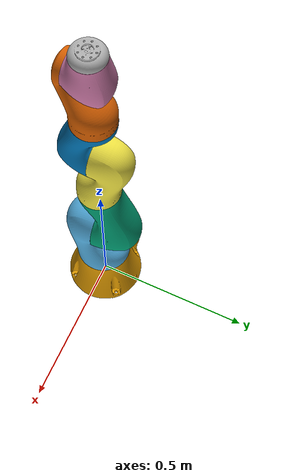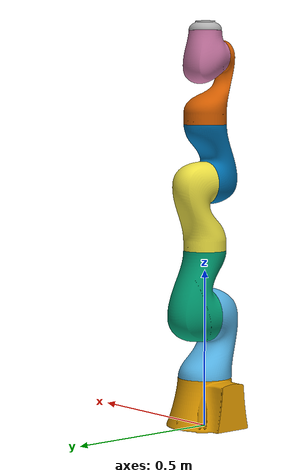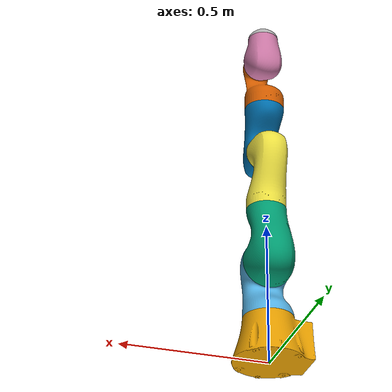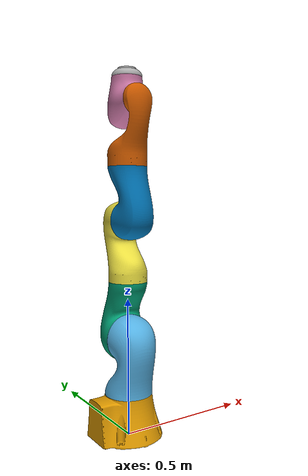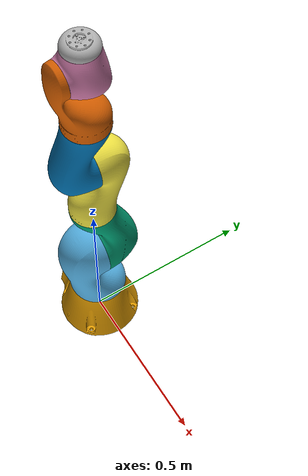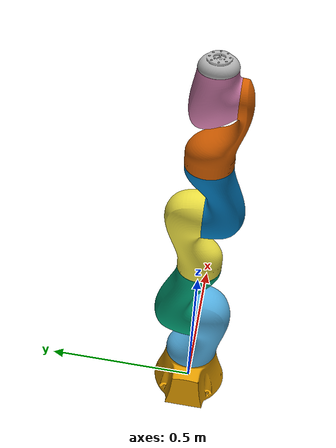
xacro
<?xml version="1.0"?>

<robot name="iiwa" xmlns:xacro="http://www.ros.org/wiki/xacro">

<xacro:include filename="$(find iiwa_description)/urdf/iiwa_macros.xacro" />
<xacro:include filename="$(find iiwa_description)/urdf/iiwa_parameters.xacro" />

    <m_link_mesh    name="${link00_name}"
                    origin_xyz="0 0 0" origin_rpy="0 0 0"
                    meshfile="package://iiwa_description/meshes/link0-binary.stl"
                    meshscale="${m_meshscale}"
                    mass="500"
                    ixx="5" ixy="0" ixz="0" iyy="6" iyz="0" izz="3"/>

    <m_joint    name="${link00_name}__${link01_name}"
                type="revolute"
                axis_xyz="0 0 1"
                origin_xyz="0 0 0" origin_rpy="0 0 0"
                parent="${link00_name}" child="${link01_name}"
                limit_e="${max_effort}"
				limit_l="-2.967" limit_u="2.967" limit_v="1.483" />

    <m_link_mesh    name="${link01_name}"
                    origin_xyz="0 0 0" origin_rpy="0 0 0"
                    meshfile="package://iiwa_description/meshes/link1-binary.stl"
                    meshscale="${m_meshscale}"
                    mass="400"
                    ixx="10" ixy="0" ixz="0" iyy="9" iyz="0" izz="2" />

    <m_joint    name="${link01_name}__${link02_name}"
                type="revolute"
                axis_xyz="0 1 0"
                origin_xyz="0 0 0.36" origin_rpy="0 0 0"
                parent="${link01_name}" child="${link02_name}"
                limit_e="${max_effort}"
				limit_l="-2.094" limit_u="2.094" limit_v="1.483" />

    <m_link_mesh    name="${link02_name}"
                    origin_xyz="0 0 -0.36" origin_rpy="0 0 0"
                    meshfile="package://iiwa_description/meshes/link2-binary.stl"
                    meshscale="${m_meshscale}"
                    mass="400"
                    ixx="5" ixy="0" ixz="0" iyy="1.8" iyz="0" izz="4.4" />

    <m_joint    name="${link02_name}__${link03_name}"
                type="revolute"
                axis_xyz="0 0 1"
                origin_xyz="0 0 0" origin_rpy="0 0 0"
                parent="${link02_name}" child="${link03_name}"
                limit_e="${max_effort}"
				limit_l="-2.967" limit_u="2.967" limit_v="1.745" />

    <m_link_mesh    name="${link03_name}"
                    origin_xyz="0 0 -0.36" origin_rpy="0 0 0"
                    meshfile="package://iiwa_description/meshes/link3-binary.stl"
                    meshscale="${m_meshscale}"
                    mass="300"
                    ixx="8" ixy="0" ixz="0" iyy="7.5" iyz="0" izz="1" />

    <m_joint    name="${link03_name}__${link04_name}"
                type="revolute"
                axis_xyz="0 1 0"
                origin_xyz="0 0 0.42" origin_rpy="0 0 0"
                parent="${link03_name}" child="${link04_name}"
                limit_e="${max_effort}"
				limit_l="-2.094" limit_u="2.094" limit_v="1.309" />

    <m_link_mesh    name="${link04_name}"
                    origin_xyz="0 0 -0.78" origin_rpy="0 0 0"
                    meshfile="package://iiwa_description/meshes/link4-binary.stl"
                    meshscale="${m_meshscale}"
                    mass="270"
                    ixx="3" ixy="0" ixz="0" iyy="1" iyz="0" izz="2.9" />

    <m_joint    name="${link04_name}__${link05_name}"
                type="revolute"
                axis_xyz="0 0 1"
                origin_xyz="0 0 0" origin_rpy="0 0 0"
                parent="${link04_name}" child="${link05_name}"
                limit_e="${max_effort}"
				limit_l="-2.967" limit_u="2.967" limit_v="2.269" />

    <m_link_mesh    name="${link05_name}"
                    origin_xyz="0 0 -0.78" origin_rpy="0 0 0"
                    meshfile="package://iiwa_description/meshes/link5-binary.stl"
                    meshscale="${m_meshscale}"
                    mass="170"
                    ixx="2" ixy="0" ixz="0" iyy="1.8" iyz="0" izz="0.5" />

    <m_joint    name="${link05_name}__${link06_name}"
                type="revolute"
                axis_xyz="0 1 0"
                origin_xyz="0 0 0.4" origin_rpy="0 0 0"
                parent="${link05_name}" child="${link06_name}"
                limit_e="${max_effort}"
				limit_l="-2.094" limit_u="2.094" limit_v="2.356" />

    <m_link_mesh    name="${link06_name}"
                    origin_xyz="0 0 -1.18" origin_rpy="0 0 0"
                    meshfile="package://iiwa_description/meshes/link6-binary.stl"
                    meshscale="${m_meshscale}"
                    mass="150"
                    ixx="0.5" ixy="0" ixz="0" iyy="0.36" iyz="0" izz="0.47" />

    <m_joint    name="${link06_name}__${link07_name}"
                type="revolute"
                axis_xyz="0 0 1"
                origin_xyz="0 0 0" origin_rpy="0 0 0"
                parent="${link06_name}" child="${link07_name}"
                limit_e="${max_effort}"
				limit_l="-3.054" limit_u="3.054" limit_v="2.356" />

    <m_link_mesh    name="${link07_name}"
                    origin_xyz="0 0 -1.18" origin_rpy="0 0 0"
                    meshfile="package://iiwa_description/meshes/link7-binary.stl"
                    meshscale="${m_meshscale}"
                    mass="30"
                    ixx="0.1" ixy="0" ixz="0" iyy="0.1" iyz="0" izz="0.1" />

	<gazebo>
		<plugin name="gazebo_ros_control" filename="libgazebo_ros_control.so">
		</plugin>
	</gazebo>

</robot>

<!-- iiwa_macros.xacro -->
<robot xmlns:xacro="http://www.ros.org/wiki/xacro">

    <xacro:macro name="m_link_mesh" params="name origin_xyz origin_rpy meshfile meshscale mass ixx ixy ixz iyy iyz izz">
        <link name="${name}">
            <inertial>
                <mass value="${mass}" />
                <origin rpy="${origin_rpy}" xyz="${origin_xyz}" />
                <inertia ixx="${ixx}" ixy="${ixy}" ixz="${ixz}" iyy="${iyy}" iyz="${iyz}" izz="${izz}" />
            </inertial>
            <collision>
                <origin rpy="${origin_rpy}" xyz="${origin_xyz}" />
                <geometry>
                    <mesh filename="${meshfile}" scale="${meshscale}"/>
                </geometry>
            </collision>
            <visual>
                <origin rpy="${origin_rpy}" xyz="${origin_xyz}" />
                <geometry>
                    <mesh filename="${meshfile}" scale="${meshscale}"/>
                </geometry>
            </visual>
        </link>
    </xacro:macro>

    <xacro:macro name="m_joint" params="name type axis_xyz origin_rpy origin_xyz parent child limit_e limit_l limit_u limit_v">
        <joint name="${name}" type="${type}">
            <axis xyz="${axis_xyz}" />
            <limit effort="${limit_e}" lower="${limit_l}" upper="${limit_u}" velocity="${limit_v}" />
            <origin rpy="${origin_rpy}" xyz="${origin_xyz}" />
            <parent link="${parent}" />
            <child link="${child}" />
        </joint>

	<transmission name="trans_${name}">
		<type>transmission_interface/SimpleTransmission</type>
		<joint name="${name}">
			<hardwareInterface>hardware_interface/EffortJointInterface</hardwareInterface>
		</joint>
		<actuator name="motor_${name}">
			<hardwareInterface>hardware_interface/EffortJointInterface</hardwareInterface>
			<mechanicalReduction>1</mechanicalReduction>
		</actuator>
	</transmission>

  </xacro:macro>
</robot>

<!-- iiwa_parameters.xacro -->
<robot xmlns:xacro="http://www.ros.org/wiki/xacro">
    <xacro:property name="link00_name" value="base_link" />
    <xacro:property name="link01_name" value="link_01" />
    <xacro:property name="link02_name" value="link_02" />
    <xacro:property name="link03_name" value="link_03" />
    <xacro:property name="link04_name" value="link_04" />
    <xacro:property name="link05_name" value="link_05" />
    <xacro:property name="link06_name" value="link_06" />
    <xacro:property name="link07_name" value="link_07" />
    <xacro:property name="m_meshscale" value="0.001 0.001 0.001" />

	<xacro:property name="max_effort" value="1000" />
</robot>
